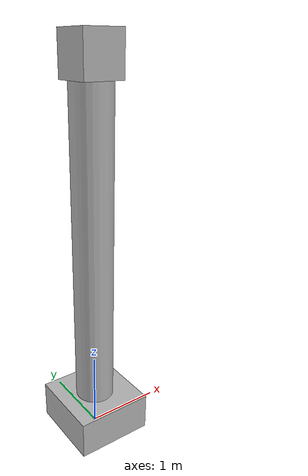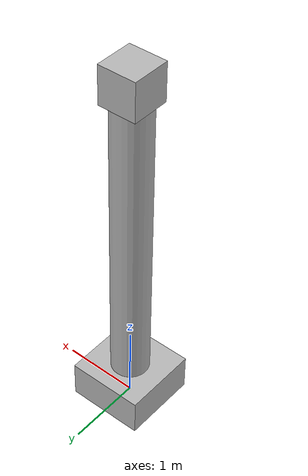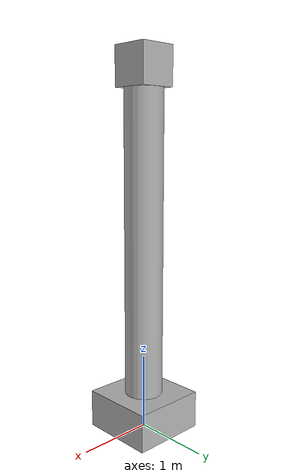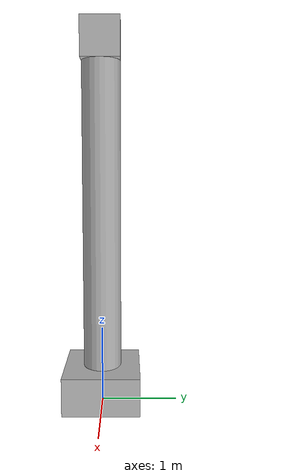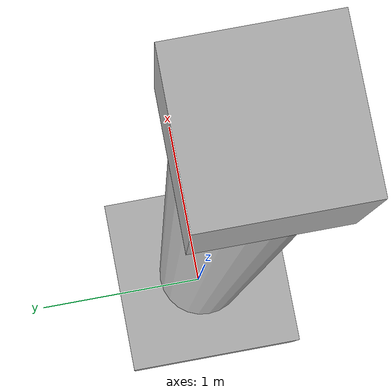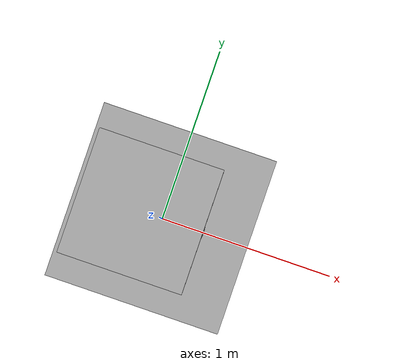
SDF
<?xml version='1.0'?>
<sdf version='1.6'>
	<model name="SimpleArm">
		<self_collide>true</self_collide>
		<pose>0.0 0.0 0.0 0.0 0.0 0.0</pose>
		<!-- Start of parts of the pmodel SimpleArm -->
		<!-- End of parts of the pmodel SimpleArm -->

		<!-- Start of links of the pmodel SimpleArm -->
		<!-- link full name is SimpleArm::BaseLink -->
		<link name="1-BaseLink">
			<pose>0.0 0.0 0.25 0.0 0.0 0.0</pose>
			<inertial>
				<pose>0.0 0.0 0.0 0.0 0.0 0.0</pose>
				<inertia>
					<ixx>10.417</ixx>
					<ixy>0.0</ixy>
					<ixz>0.0</ixz>
					<iyy>16.667</iyy>
					<iyz>0.0</iyz>
					<izz>10.417</izz>
				</inertia>
				<mass>100</mass>
			</inertial>
			<!-- body full name is SimpleArm::BaseLink::BaseLink -->
			<collision name="1--BaseLink">
				<laser_retro>0.0</laser_retro>
				<pose>0.0 0.0 0.0 0.0 0.0 0.0</pose>
				<geometry>
					<box>
						<size>1 1 0.5</size>
					</box>
				</geometry>
				<surface>
					<bounce>
						<restitution_coefficient>0.0</restitution_coefficient>
						<threshold>100000.0</threshold>
					</bounce>
					<friction>
						<ode>
							<mu>1.0</mu>
							<mu2>1.0</mu2>
							<fdir1>0.0 0.0 0.0</fdir1>
							<slip1>0.0</slip1>
							<slip2>0.0</slip2>
						</ode>
						<torsional>
							<coefficient>1.0</coefficient>
							<surface_radius>0.0</surface_radius>
						</torsional>
					</friction>
				</surface>
			</collision>
			<visual name="1--BaseLink">
				<laser_retro>0.0</laser_retro>
				<pose>0.0 0.0 0.0 0.0 0.0 0.0</pose>
				<geometry>
					<box>
						<size>1 1 0.5</size>
					</box>
				</geometry>
				<surface>
					<bounce>
						<restitution_coefficient>0.0</restitution_coefficient>
						<threshold>100000.0</threshold>
					</bounce>
					<friction>
						<ode>
							<mu>1.0</mu>
							<mu2>1.0</mu2>
							<fdir1>0.0 0.0 0.0</fdir1>
							<slip1>0.0</slip1>
							<slip2>0.0</slip2>
						</ode>
						<torsional>
							<coefficient>1.0</coefficient>
							<surface_radius>0.0</surface_radius>
						</torsional>
					</friction>
				</surface>
			</visual>
		</link>
		<!-- link full name is SimpleArm::IntermediateLink -->
		<link name="2-IntermediateLink">
			<pose>0.0 0.0 2.5 0.0 0.0 0.0</pose>
			<inertial>
				<pose>0.0 0.0 0.0 0.0 0.0 0.0</pose>
				<inertia>
					<ixx>1.349</ixx>
					<ixy>0.0</ixy>
					<ixz>0.0</ixz>
					<iyy>1.349</iyy>
					<iyz>0.0</iyz>
					<izz>0.0313</izz>
				</inertia>
				<mass>1.0</mass>
			</inertial>
			<!-- body full name is SimpleArm::IntermediateLink::IntermediateLink -->
			<collision name="2--IntermediateLink">
				<laser_retro>0.0</laser_retro>
				<pose>0.0 0.0 0.0 0.0 0.0 0.0</pose>
				<geometry>
					<cylinder>
						<radius>0.25</radius>
						<length>4</length>
					</cylinder>
				</geometry>
				<surface>
					<bounce>
						<restitution_coefficient>0.0</restitution_coefficient>
						<threshold>100000.0</threshold>
					</bounce>
					<friction>
						<ode>
							<mu>1.0</mu>
							<mu2>1.0</mu2>
							<fdir1>0.0 0.0 0.0</fdir1>
							<slip1>0.0</slip1>
							<slip2>0.0</slip2>
						</ode>
						<torsional>
							<coefficient>1.0</coefficient>
							<surface_radius>0.0</surface_radius>
						</torsional>
					</friction>
				</surface>
			</collision>
			<visual name="2--IntermediateLink">
				<laser_retro>0.0</laser_retro>
				<pose>0.0 0.0 0.0 0.0 0.0 0.0</pose>
				<geometry>
					<cylinder>
						<radius>0.25</radius>
						<length>4</length>
					</cylinder>
				</geometry>
				<surface>
					<bounce>
						<restitution_coefficient>0.0</restitution_coefficient>
						<threshold>100000.0</threshold>
					</bounce>
					<friction>
						<ode>
							<mu>1.0</mu>
							<mu2>1.0</mu2>
							<fdir1>0.0 0.0 0.0</fdir1>
							<slip1>0.0</slip1>
							<slip2>0.0</slip2>
						</ode>
						<torsional>
							<coefficient>1.0</coefficient>
							<surface_radius>0.0</surface_radius>
						</torsional>
					</friction>
				</surface>
			</visual>
		</link>
		<!-- link full name is SimpleArm::Gripper -->
		<link name="3-Gripper">
			<pose>0.0 0.0 4.75 0.0 0.0 0.0</pose>
			<inertial>
				<pose>0.0 0.0 0.0 0.0 0.0 0.0</pose>
				<inertia>
					<ixx>0.0208</ixx>
					<ixy>0.0</ixy>
					<ixz>0.0</ixz>
					<iyy>0.0208</iyy>
					<iyz>0.0</iyz>
					<izz>0.0208</izz>
				</inertia>
				<mass>0.5</mass>
			</inertial>
			<!-- body full name is SimpleArm::Gripper::Gripper -->
			<collision name="3--Gripper">
				<laser_retro>0.0</laser_retro>
				<pose>0.0 0.0 0.0 0.0 0.0 0.0</pose>
				<geometry>
					<box>
						<size>0.5 0.5 0.5</size>
					</box>
				</geometry>
				<surface>
					<bounce>
						<restitution_coefficient>0.0</restitution_coefficient>
						<threshold>100000.0</threshold>
					</bounce>
					<friction>
						<ode>
							<mu>1.0</mu>
							<mu2>1.0</mu2>
							<fdir1>0.0 0.0 0.0</fdir1>
							<slip1>0.0</slip1>
							<slip2>0.0</slip2>
						</ode>
						<torsional>
							<coefficient>1.0</coefficient>
							<surface_radius>0.0</surface_radius>
						</torsional>
					</friction>
				</surface>
			</collision>
			<visual name="3--Gripper">
				<laser_retro>0.0</laser_retro>
				<pose>0.0 0.0 0.0 0.0 0.0 0.0</pose>
				<geometry>
					<box>
						<size>0.5 0.5 0.5</size>
					</box>
				</geometry>
				<surface>
					<bounce>
						<restitution_coefficient>0.0</restitution_coefficient>
						<threshold>100000.0</threshold>
					</bounce>
					<friction>
						<ode>
							<mu>1.0</mu>
							<mu2>1.0</mu2>
							<fdir1>0.0 0.0 0.0</fdir1>
							<slip1>0.0</slip1>
							<slip2>0.0</slip2>
						</ode>
						<torsional>
							<coefficient>1.0</coefficient>
							<surface_radius>0.0</surface_radius>
						</torsional>
					</friction>
				</surface>
			</visual>
			<!-- WARNING: Annotation not found for the sensor Camera. The SDF generator relies on annotations to specify aspects of the
                   sensor that are accounted for in the equations. --> If you wish to reflect these aspects in SDF,
			please add an appropriate annotation to the sensor. -->
		</link>
		<!-- End of links of the pmodel SimpleArm -->

		<!-- Start of joints of the pmodel SimpleArm -->
		<!-- Full name of joint: SimpleArm::BaseLink::ElbowJoint from SimpleArm::BaseLink to SimpleArm::IntermediateLink-->
		<joint name="4-ElbowJoint" type="revolute">
			<pose>0.0 0.0 -2.0 0.0 -0.0 0.0</pose>
			<parent>1-BaseLink</parent>
			<child>2-IntermediateLink</child>
			<!-- WARNING: The SDF generator relies on annotations of the joint 4-ElbowJoint to specify in SDF aspects of the joint that are
                 accounted for in the equations. -->
			<axis>
				<xyz>1 0 0</xyz>
				<initial_position>0</initial_position>
				<dynamics>
					<damping>0</damping>
					<friction>0</friction>
					<spring_reference>0</spring_reference>
					<spring_stiffness>0</spring_stiffness>
				</dynamics>
				<limit>
					<lower>-2.5707963705062866</lower>
					<upper>2.5707963705062866</upper>
					<velocity>100</velocity>
					<effort>10</effort>
				</limit>
			</axis>
		</joint>
		<!-- Full name of joint: SimpleArm::IntermediateLink::WristJoint from SimpleArm::IntermediateLink to SimpleArm::Gripper-->
		<joint name="5-WristJoint" type="revolute">
			<pose>0.0 0.0 -2.25 0.0 -0.0 0.0</pose>
			<parent>2-IntermediateLink</parent>
			<child>3-Gripper</child>
			<!-- WARNING: The SDF generator relies on annotations of the joint 5-WristJoint to specify in SDF aspects of the joint that are
                 accounted for in the equations. -->
			<axis>
				<xyz>0 0 1</xyz>
				<initial_position>0</initial_position>
				<dynamics>
					<damping>0</damping>
					<friction>0</friction>
					<spring_reference>0</spring_reference>
					<spring_stiffness>1000</spring_stiffness>
				</dynamics>
				<limit>
					<lower>-6.2831854820251465</lower>
					<upper>6.2831854820251465</upper>
					<velocity>5</velocity>
				</limit>
			</axis>
		</joint>
		<!-- End of joints of the pmodel SimpleArm -->

		<!-- Start of fixed connections of the pmodel SimpleArm -->
		<!-- End of fixed connections of the pmodel SimpleArm -->
	</model>
</sdf>
